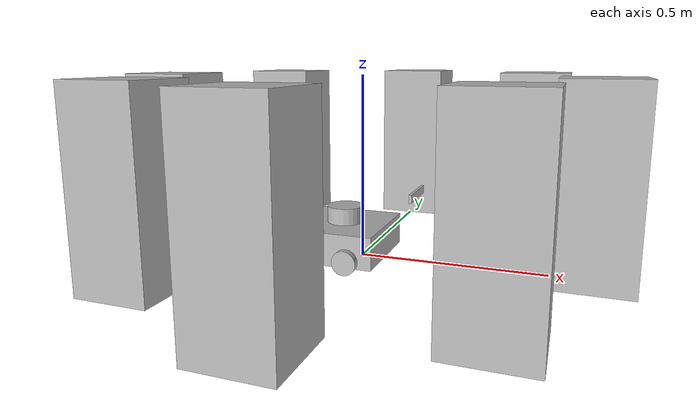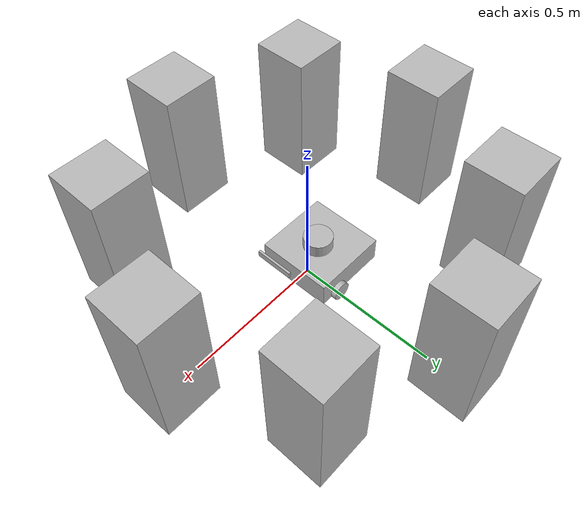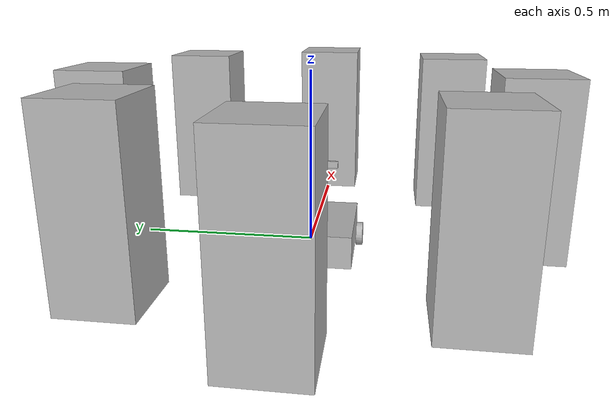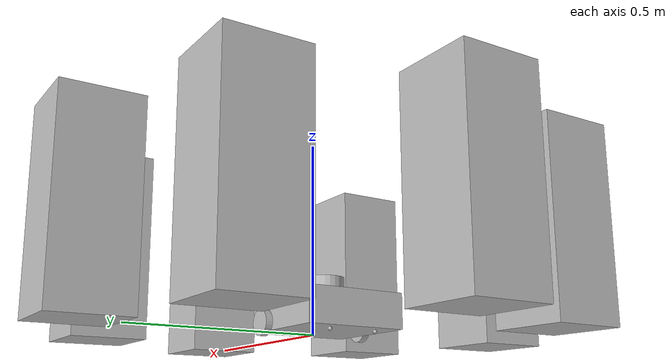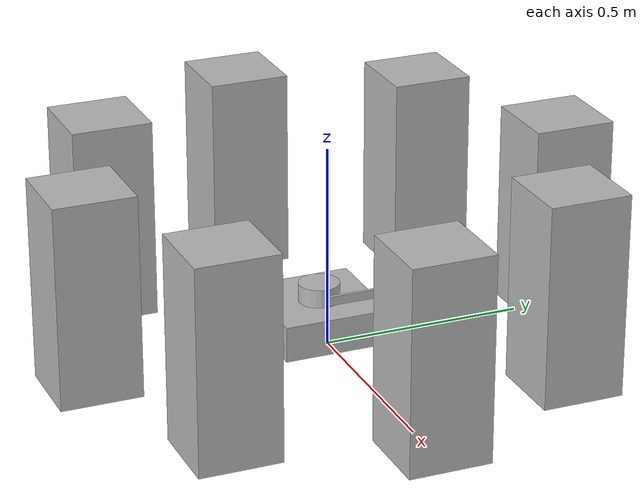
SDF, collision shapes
<?xml version="1.0" ?>
<sdf version="1.6">
  <model name="turtlebot3_waffle_pi_camera">
    <!-- Base TurtleBot3 Waffle Pi -->
    <include>
      <uri>model://turtlebot3_waffle_pi</uri>
    </include>

    <!-- Extra Camera Link -->
    <link name="camera_link">
      <pose>0.15 0 0.25 0 0 0</pose>
      <inertial>
        <mass>0.1</mass>
      </inertial>

      <visual name="camera_visual">
        <geometry>
          <box>
            <size>0.05 0.05 0.05</size>
          </box>
        </geometry>
        <material>
          <ambient>0.1 0.1 0.1 1</ambient>
          <diffuse>0.5 0.5 0.5 1</diffuse>
        </material>
      </visual>

      <sensor name="rgb_camera" type="camera">
        <pose>0 0 0 0 0 0</pose>
        <always_on>1</always_on>
        <visualize>1</visualize>
        <update_rate>30</update_rate>
        <camera>
          <horizontal_fov>1.047</horizontal_fov>
          <image>
            <width>640</width>
            <height>480</height>
            <format>R8G8B8</format>
          </image>
          <clip>
            <near>0.05</near>
            <far>8.0</far>
          </clip>
        </camera>
        <plugin name="camera_controller" filename="libgazebo_ros_camera.so">
          <ros>
            <namespace>/</namespace>
          </ros>
          <frame_name>camera_link</frame_name>
          <camera_name>camera</camera_name>
          <update_rate>30.0</update_rate>
          <image_topic_name>camera/image_raw</image_topic_name>
          <camera_info_topic_name>camera/camera_info</camera_info_topic_name>
        </plugin>
      </sensor>
    </link>

    <!-- LiDAR Sensor -->
    <link name="lidar_link">
      <pose>0 0 0.15 0 0 0</pose>
      <sensor name="lidar_sensor" type="ray">
        <always_on>1</always_on>
        <update_rate>10</update_rate>
        <ray>
          <scan>
            <horizontal>
              <samples>360</samples>
              <resolution>1</resolution>
              <min_angle>-3.14159</min_angle>
              <max_angle>3.14159</max_angle>
            </horizontal>
          </scan>
          <range>
            <min>0.12</min>
            <max>3.5</max>
            <resolution>0.01</resolution>
          </range>
        </ray>
        <plugin name="lidar_plugin" filename="libgazebo_ros_ray_sensor.so">
          <ros>
            <namespace>/</namespace>
          </ros>
          <frame_name>lidar_link</frame_name>
          <topic_name>scan</topic_name>
        </plugin>
      </sensor>
    </link>

    <!-- IMU Sensor -->
    <link name="imu_link">
      <pose>0 0 0.1 0 0 0</pose>
      <sensor name="imu_sensor" type="imu">
        <always_on>1</always_on>
        <update_rate>50</update_rate>
        <plugin name="imu_plugin" filename="libgazebo_ros_imu.so">
          <ros>
            <namespace>/</namespace>
          </ros>
          <frame_name>imu_link</frame_name>
          <topic_name>imu</topic_name>
        </plugin>
      </sensor>
    </link>

    <!-- obstacles -->
    <model name="obstacle_ring">
      <static>true</static>
      <link name="ring_link">
        <visual name="box_0">
          <pose>0.6 0 0.25 0 0 0</pose>
          <geometry><box><size>0.2 0.2 0.5</size></box></geometry>
        </visual>
        <collision name="box_0_collision">
          <pose>0.6 0 0.25 0 0 0</pose>
          <geometry><box><size>0.2 0.2 0.5</size></box></geometry>
        </collision>

        <visual name="box_1">
          <pose>0.42 0.42 0.25 0 0 0</pose>
          <geometry><box><size>0.2 0.2 0.5</size></box></geometry>
        </visual>
        <collision name="box_1_collision">
          <pose>0.42 0.42 0.25 0 0 0</pose>
          <geometry><box><size>0.2 0.2 0.5</size></box></geometry>
        </collision>

        <visual name="box_2">
          <pose>0 0.6 0.25 0 0 0</pose>
          <geometry><box><size>0.2 0.2 0.5</size></box></geometry>
        </visual>
        <collision name="box_2_collision">
          <pose>0 0.6 0.25 0 0 0</pose>
          <geometry><box><size>0.2 0.2 0.5</size></box></geometry>
        </collision>

        <visual name="box_3">
          <pose>-0.42 0.42 0.25 0 0 0</pose>
          <geometry><box><size>0.2 0.2 0.5</size></box></geometry>
        </visual>
        <collision name="box_3_collision">
          <pose>-0.42 0.42 0.25 0 0 0</pose>
          <geometry><box><size>0.2 0.2 0.5</size></box></geometry>
        </collision>

        <visual name="box_4">
          <pose>-0.6 0 0.25 0 0 0</pose>
          <geometry><box><size>0.2 0.2 0.5</size></box></geometry>
        </visual>
        <collision name="box_4_collision">
          <pose>-0.6 0 0.25 0 0 0</pose>
          <geometry><box><size>0.2 0.2 0.5</size></box></geometry>
        </collision>

        <visual name="box_5">
          <pose>-0.42 -0.42 0.25 0 0 0</pose>
          <geometry><box><size>0.2 0.2 0.5</size></box></geometry>
        </visual>
        <collision name="box_5_collision">
          <pose>-0.42 -0.42 0.25 0 0 0</pose>
          <geometry><box><size>0.2 0.2 0.5</size></box></geometry>
        </collision>

        <visual name="box_6">
          <pose>0 -0.6 0.25 0 0 0</pose>
          <geometry><box><size>0.2 0.2 0.5</size></box></geometry>
        </visual>
        <collision name="box_6_collision">
          <pose>0 -0.6 0.25 0 0 0</pose>
          <geometry><box><size>0.2 0.2 0.5</size></box></geometry>
        </collision>

        <visual name="box_7">
          <pose>0.42 -0.42 0.25 0 0 0</pose>
          <geometry><box><size>0.2 0.2 0.5</size></box></geometry>
        </visual>
        <collision name="box_7_collision">
          <pose>0.42 -0.42 0.25 0 0 0</pose>
          <geometry><box><size>0.2 0.2 0.5</size></box></geometry>
        </collision>
      </link>
    </model>

  </model>
</sdf>

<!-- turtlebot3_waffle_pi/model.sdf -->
<sdf version="1.5">
  <model name="turtlebot3_waffle_pi">
  <pose>0.0 0.0 0.0 0.0 0.0 0.0</pose>

    <link name="base_footprint" />

    <link name="base_link">

      <inertial>
        <pose>-0.064 0 0.048 0 0 0</pose>
        <inertia>
          <ixx>0.001</ixx>
          <ixy>0.000</ixy>
          <ixz>0.000</ixz>
          <iyy>0.001</iyy>
          <iyz>0.000</iyz>
          <izz>0.001</izz>
        </inertia>
        <mass>1.0</mass>
      </inertial>

      <collision name="base_collision">
        <pose>-0.064 0 0.048 0 0 0</pose>
        <geometry>
          <box>
            <size>0.265 0.265 0.089</size>
          </box>
        </geometry>
      </collision>

      <visual name="base_visual">
        <pose>-0.064 0 0 0 0 0</pose>
        <geometry>
          <mesh>
            <uri>model://turtlebot3_waffle/meshes/waffle_base.dae</uri>
            <scale>0.001 0.001 0.001</scale>
          </mesh>
        </geometry>
      </visual>
    </link>

    <link name="imu_link">
      <sensor name="tb3_imu" type="imu">
        <always_on>true</always_on>
        <update_rate>200</update_rate>
        <imu>
          <angular_velocity>
            <x>
              <noise type="gaussian">
                <mean>0.0</mean>
                <stddev>2e-4</stddev>
              </noise>
            </x>
            <y>
              <noise type="gaussian">
                <mean>0.0</mean>
                <stddev>2e-4</stddev>
              </noise>
            </y>
            <z>
              <noise type="gaussian">
                <mean>0.0</mean>
                <stddev>2e-4</stddev>
              </noise>
            </z>
          </angular_velocity>
          <linear_acceleration>
            <x>
              <noise type="gaussian">
                <mean>0.0</mean>
                <stddev>1.7e-2</stddev>
              </noise>
            </x>
            <y>
              <noise type="gaussian">
                <mean>0.0</mean>
                <stddev>1.7e-2</stddev>
              </noise>
            </y>
            <z>
              <noise type="gaussian">
                <mean>0.0</mean>
                <stddev>1.7e-2</stddev>
              </noise>
            </z>
          </linear_acceleration>
        </imu>
        <plugin name="turtlebot3_imu" filename="libgazebo_ros_imu_sensor.so">
          <ros>

            <argument>~/out:=imu</argument>
          </ros>
        </plugin>
      </sensor>
    </link>

    <link name="base_scan">
      <inertial>
        <pose>-0.052 0 0.111 0 0 0</pose>
        <inertia>
          <ixx>0.001</ixx>
          <ixy>0.000</ixy>
          <ixz>0.000</ixz>
          <iyy>0.001</iyy>
          <iyz>0.000</iyz>
          <izz>0.001</izz>
        </inertia>
        <mass>0.125</mass>
      </inertial>

      <collision name="lidar_sensor_collision">
        <pose>-0.052 0 0.111 0 0 0</pose>
        <geometry>
          <cylinder>
            <radius>0.0508</radius>
            <length>0.055</length>
          </cylinder>
        </geometry>
      </collision>

      <visual name="lidar_sensor_visual">
        <pose>-0.064 0 0.121 0 0 0</pose>
        <geometry>
          <mesh>
            <uri>model://turtlebot3_waffle/meshes/lds.dae</uri>
            <scale>0.001 0.001 0.001</scale>
          </mesh>
        </geometry>
      </visual>

      <sensor name="hls_lfcd_lds" type="ray">
        <always_on>true</always_on>
        <visualize>true</visualize>
        <pose>-0.064 0 0.121 0 0 0</pose>
        <update_rate>5</update_rate>
        <ray>
          <scan>
            <horizontal>
              <samples>360</samples>
              <resolution>1.000000</resolution>
              <min_angle>0.000000</min_angle>
              <max_angle>6.280000</max_angle>
            </horizontal>
          </scan>
          <range>
            <min>0.120000</min>
            <max>3.5</max>
            <resolution>0.015000</resolution>
          </range>
          <noise>
            <type>gaussian</type>
            <mean>0.0</mean>
            <stddev>0.01</stddev>
          </noise>
        </ray>
        <plugin name="turtlebot3_laserscan" filename="libgazebo_ros_ray_sensor.so">
          <ros>

            <argument>~/out:=scan</argument>
          </ros>
          <output_type>sensor_msgs/LaserScan</output_type>
          <frame_name>base_scan</frame_name>
        </plugin>
      </sensor>
    </link>

    <link name="wheel_left_link">

      <inertial>
        <pose>0.0 0.144 0.023 -1.57 0 0</pose>
        <inertia>
          <ixx>0.001</ixx>
          <ixy>0.000</ixy>
          <ixz>0.000</ixz>
          <iyy>0.001</iyy>
          <iyz>0.000</iyz>
          <izz>0.001</izz>
        </inertia>
        <mass>0.1</mass>
      </inertial>

      <collision name="wheel_left_collision">
        <pose>0.0 0.144 0.023 -1.57 0 0</pose>
        <geometry>
          <cylinder>
            <radius>0.033</radius>
            <length>0.018</length>
          </cylinder>
        </geometry>
        <surface>

          <friction>
            <ode>
              <mu>100000.0</mu>
              <mu2>100000.0</mu2>
              <fdir1>0 0 0</fdir1>
              <slip1>0.0</slip1>
              <slip2>0.0</slip2>
            </ode>
          </friction>
          <contact>
            <ode>
              <soft_cfm>0</soft_cfm>
              <soft_erp>0.2</soft_erp>
              <kp>1e+5</kp>
              <kd>1</kd>
              <max_vel>0.01</max_vel>
              <min_depth>0.001</min_depth>
            </ode>
          </contact>
        </surface>
      </collision>

      <visual name="wheel_left_visual">
        <pose>0.0 0.144 0.023 0 0 0</pose>
        <geometry>
          <mesh>
            <uri>model://turtlebot3_waffle/meshes/left_tire.dae</uri>
            <scale>0.001 0.001 0.001</scale>
          </mesh>
        </geometry>
      </visual>
    </link>

    <link name="wheel_right_link">

      <inertial>
        <pose>0.0 -0.144 0.023 -1.57 0 0</pose>
        <inertia>
          <ixx>0.001</ixx>
          <ixy>0.000</ixy>
          <ixz>0.000</ixz>
          <iyy>0.001</iyy>
          <iyz>0.000</iyz>
          <izz>0.001</izz>
        </inertia>
        <mass>0.1</mass>
      </inertial>

      <collision name="wheel_right_collision">
        <pose>0.0 -0.144 0.023 -1.57 0 0</pose>
        <geometry>
          <cylinder>
            <radius>0.033</radius>
            <length>0.018</length>
          </cylinder>
        </geometry>
        <surface>

          <friction>
            <ode>
              <mu>100000.0</mu>
              <mu2>100000.0</mu2>
              <fdir1>0 0 0</fdir1>
              <slip1>0.0</slip1>
              <slip2>0.0</slip2>
            </ode>
          </friction>
          <contact>
            <ode>
              <soft_cfm>0</soft_cfm>
              <soft_erp>0.2</soft_erp>
              <kp>1e+5</kp>
              <kd>1</kd>
              <max_vel>0.01</max_vel>
              <min_depth>0.001</min_depth>
            </ode>
          </contact>
        </surface>
      </collision>

      <visual name="wheel_right_visual">
        <pose>0.0 -0.144 0.023 0 0 0</pose>
        <geometry>
          <mesh>
            <uri>model://turtlebot3_waffle/meshes/right_tire.dae</uri>
            <scale>0.001 0.001 0.001</scale>
          </mesh>
        </geometry>
      </visual>
    </link>

    <link name="caster_back_right_link">
      <pose>-0.177 -0.064 -0.004 0 0 0</pose>
      <inertial>
        <mass>0.001</mass>
        <inertia>
          <ixx>0.00001</ixx>
          <ixy>0.000</ixy>
          <ixz>0.000</ixz>
          <iyy>0.00001</iyy>
          <iyz>0.000</iyz>
          <izz>0.00001</izz>
        </inertia>
      </inertial>
      <collision name="collision">
        <geometry>
          <sphere>
            <radius>0.005000</radius>
          </sphere>
        </geometry>
        <surface>
          <contact>
            <ode>
              <soft_cfm>0</soft_cfm>
              <soft_erp>0.2</soft_erp>
              <kp>1e+5</kp>
              <kd>1</kd>
              <max_vel>0.01</max_vel>
              <min_depth>0.001</min_depth>
            </ode>
          </contact>
        </surface>
      </collision>
    </link>

    <link name="caster_back_left_link">
      <pose>-0.177 0.064 -0.004 0 0 0</pose>
      <inertial>
        <mass>0.001</mass>
        <inertia>
          <ixx>0.00001</ixx>
          <ixy>0.000</ixy>
          <ixz>0.000</ixz>
          <iyy>0.00001</iyy>
          <iyz>0.000</iyz>
          <izz>0.00001</izz>
        </inertia>
      </inertial>
      <collision name="collision">
        <geometry>
          <sphere>
            <radius>0.005000</radius>
          </sphere>
        </geometry>
        <surface>
          <contact>
            <ode>
              <soft_cfm>0</soft_cfm>
              <soft_erp>0.2</soft_erp>
              <kp>1e+5</kp>
              <kd>1</kd>
              <max_vel>0.01</max_vel>
              <min_depth>0.001</min_depth>
            </ode>
          </contact>
        </surface>
      </collision>
    </link>

    <link name="camera_link" />

    <link name="camera_rgb_frame">
      <inertial>
        <pose>0.076 0.0 0.093 0 0 0</pose>
        <inertia>
          <ixx>0.001</ixx>
          <ixy>0.000</ixy>
          <ixz>0.000</ixz>
          <iyy>0.001</iyy>
          <iyz>0.000</iyz>
          <izz>0.001</izz>
        </inertia>
        <mass>0.035</mass>
      </inertial>

      <collision name="collision">
        <pose>0.076 0.0 0.093 0 0 0</pose>
        <geometry>
          <box>
            <size>0.008 0.130 0.022</size>
          </box>
        </geometry>
      </collision>
      <pose>0.076 0.0 0.093 0 0 0</pose>
      <sensor name="camera" type="camera">
        <always_on>true</always_on>
        <visualize>true</visualize>
        <update_rate>30</update_rate>
        <camera name="picam">
          <horizontal_fov>1.085595</horizontal_fov>
          <image>
              <width>640</width>
              <height>480</height>
              <format>R8G8B8</format>
          </image>
          <clip>
              <near>0.03</near>
              <far>100</far>
          </clip>
          <noise>
            <type>gaussian</type>

            <mean>0.0</mean>
            <stddev>0.007</stddev>
          </noise>
        </camera>
          <plugin name="camera_driver" filename="libgazebo_ros_camera.so">
            <ros>

            </ros>

          </plugin>
      </sensor>
    </link>

    <joint name="base_joint" type="fixed">
      <parent>base_footprint</parent>
      <child>base_link</child>
      <pose>0.0 0.0 0.010 0 0 0</pose>
    </joint>

    <joint name="wheel_left_joint" type="revolute">
      <parent>base_link</parent>
      <child>wheel_left_link</child>
      <pose>0.0 0.144 0.023 -1.57 0 0</pose>
      <axis>
        <xyz>0 0 1</xyz>
      </axis>
    </joint>

    <joint name="wheel_right_joint" type="revolute">
      <parent>base_link</parent>
      <child>wheel_right_link</child>
      <pose>0.0 -0.144 0.023 -1.57 0 0</pose>
      <axis>
        <xyz>0 0 1</xyz>
      </axis>
    </joint>

    <joint name="caster_back_right_joint" type="ball">
      <parent>base_link</parent>
      <child>caster_back_right_link</child>
    </joint>

    <joint name="caster_back_left_joint" type="ball">
      <parent>base_link</parent>
      <child>caster_back_left_link</child>
    </joint>

    <joint name="lidar_joint" type="fixed">
      <parent>base_link</parent>
      <child>base_scan</child>
      <pose>-0.064 0 0.121 0 0 0</pose>
      <axis>
        <xyz>0 0 1</xyz>
      </axis>
    </joint>

    <joint name="camera_joint" type="fixed">
      <parent>base_link</parent>
      <child>camera_link</child>
      <pose>0.073 -0.011 0.084 0 0 0</pose>
      <axis>
        <xyz>0 0 1</xyz>
      </axis>
    </joint>

    <joint name="camera_rgb_joint" type="fixed">
      <parent>camera_link</parent>
      <child>camera_rgb_frame</child>
      <pose>0.003 0.011 0.009 0 0 0</pose>
      <axis>
        <xyz>0 0 1</xyz>
      </axis>
    </joint>

    <plugin name="turtlebot3_diff_drive" filename="libgazebo_ros_diff_drive.so">

      <ros>

      </ros>

      <update_rate>30</update_rate>

      <left_joint>wheel_left_joint</left_joint>
      <right_joint>wheel_right_joint</right_joint>

      <wheel_separation>0.287</wheel_separation>
      <wheel_diameter>0.066</wheel_diameter>

      <max_wheel_torque>20</max_wheel_torque>
      <max_wheel_acceleration>1.0</max_wheel_acceleration>

      <command_topic>cmd_vel</command_topic>

      <publish_odom>true</publish_odom>
      <publish_odom_tf>true</publish_odom_tf>
      <publish_wheel_tf>false</publish_wheel_tf>

      <odometry_topic>odom</odometry_topic>
      <odometry_frame>odom</odometry_frame>
      <robot_base_frame>base_footprint</robot_base_frame>

    </plugin>

    <plugin name="turtlebot3_joint_state" filename="libgazebo_ros_joint_state_publisher.so">
      <ros>

        <argument>~/out:=joint_states</argument>
      </ros>
      <update_rate>30</update_rate>
      <joint_name>wheel_left_joint</joint_name>
      <joint_name>wheel_right_joint</joint_name>
    </plugin>

  </model>
</sdf>
